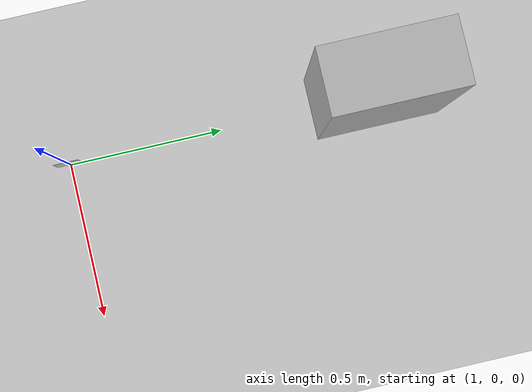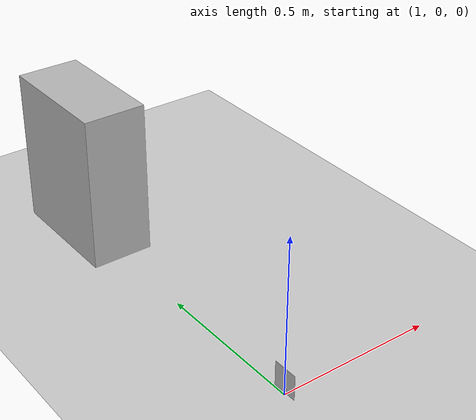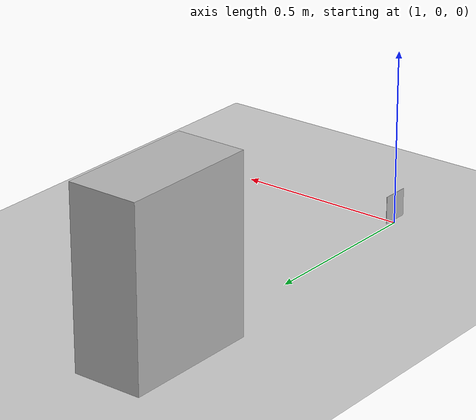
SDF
<?xml version="1.0" ?>
<sdf version="1.8">
    <world name="test_ground">
        <physics name="1ms" type="ignored">
            <max_step_size>0.001</max_step_size>
            <real_time_factor>1.0</real_time_factor>
        </physics>
        <plugin
            filename="libignition-gazebo-physics-system.so"
            name="ignition::gazebo::systems::Physics">
        </plugin>
        <plugin
            filename="libignition-gazebo-user-commands-system.so"
            name="ignition::gazebo::systems::UserCommands">
        </plugin>
        <plugin
            filename="libignition-gazebo-scene-broadcaster-system.so"
            name="ignition::gazebo::systems::SceneBroadcaster">
        </plugin>

        <scene>
            <ambient>1.0 1.0 1.0</ambient>
            <background>0.8 0.8 0.8</background>
            <grid>true</grid>
        </scene>

        <light type="directional" name="sun">
            <cast_shadows>true</cast_shadows>
            <pose>0 0 10 0 0 0</pose>
            <diffuse>0.8 0.8 0.8 1</diffuse>
            <specular>0.2 0.2 0.2 1</specular>
            <attenuation>
                <range>1000</range>
                <constant>0.9</constant>
                <linear>0.01</linear>
                <quadratic>0.001</quadratic>
            </attenuation>
            <direction>-0.5 0.1 -0.9</direction>
        </light>

        <model name="ground_plane">
            <static>true</static>
            <link name="link">
                <collision name="collision">
                <geometry>
                    <plane>
                    <normal>0 0 1</normal>
                    </plane>
                </geometry>
                </collision>
                <visual name="visual">
                <geometry>
                    <plane>
                    <normal>0 0 1</normal>
                    <size>100 100</size>
                    </plane>
                </geometry>
                <material>
                    <ambient>0.8 0.8 0.8 1</ambient>
                    <diffuse>0.8 0.8 0.8 1</diffuse>
                    <specular>0.8 0.8 0.8 1</specular>
                </material>
                </visual>
            </link>
        </model>

        <include>
            <uri>model://walls</uri>
            <pose>1.0 1.0 0.0 0 0 0</pose>
        </include>

        <include>
            <uri>model://aruco000</uri>
            <pose>1.0 0.0 0.05 0 0 0</pose>
        </include>

    </world>
</sdf>

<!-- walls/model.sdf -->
<sdf version='1.4'>
    <model name='walls'>
    <static>true</static>

        <link name='link0'>
            <pose>0 0 0.25 0 0 0</pose>

            <visual name='visual'>
                <geometry>
                    <box>
                        <size>0.2 0.4 0.5</size>
                    </box>
                </geometry>
            </visual>

            <collision name='collision'>
                <pose>0 0 0 0 0 0</pose>
                <geometry>
                    <box>
                        <size>0.2 0.4 0.5</size>
                    </box>
                </geometry>
            </collision>

        </link>

    </model>

</sdf>

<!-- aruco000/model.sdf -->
<sdf version='1.4'>
    <model name='aruco000_cv'>
    <static>true</static>

        <link name='link0'>
            <pose>0 0 0 3.1415 0 3.1415</pose>

            <visual name='visual'>
                <geometry>
                    <mesh>
                        <uri>./meshes/aruco000.dae</uri>
                    </mesh>
                </geometry>
            </visual>

            <collision name='collision'>
                <pose>0 0 -0.03 0 0 0</pose>
                <geometry>
                    <box>
                        <size>0.001 0.04 0.04</size>
                    </box>
                </geometry>
            </collision>

        </link>

    </model>

</sdf>
